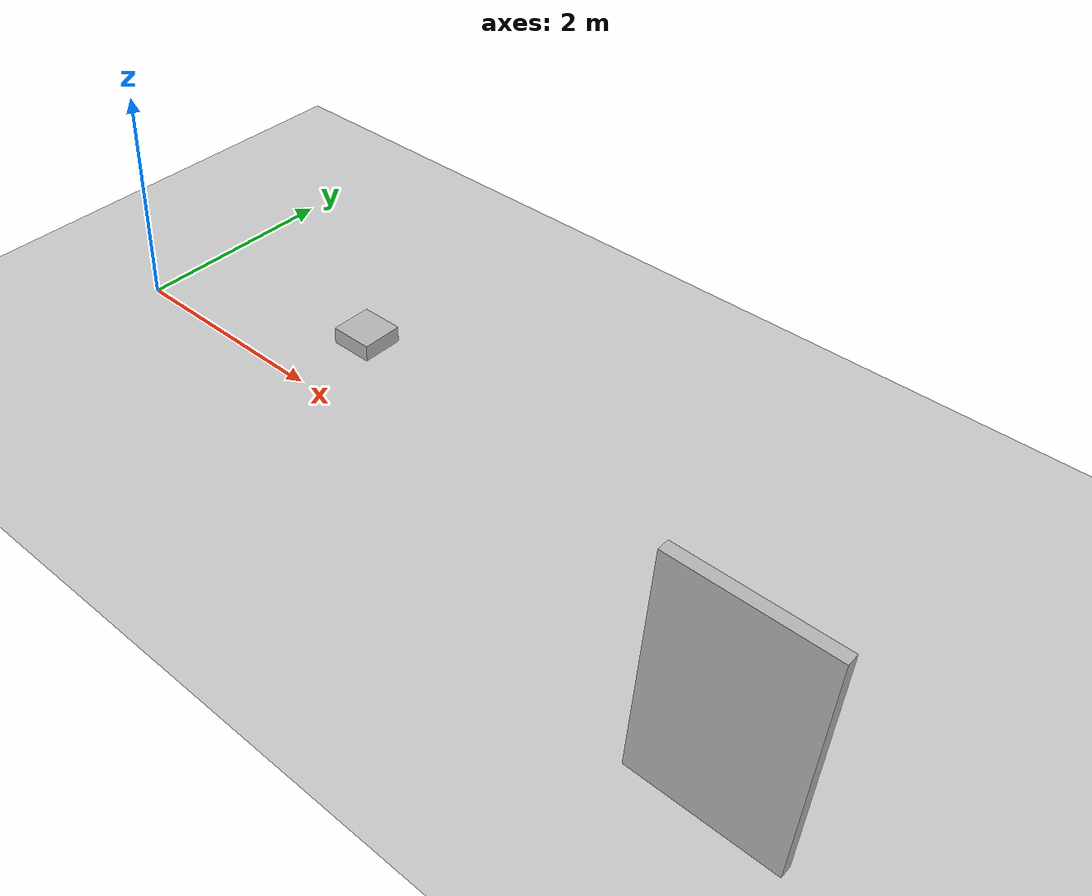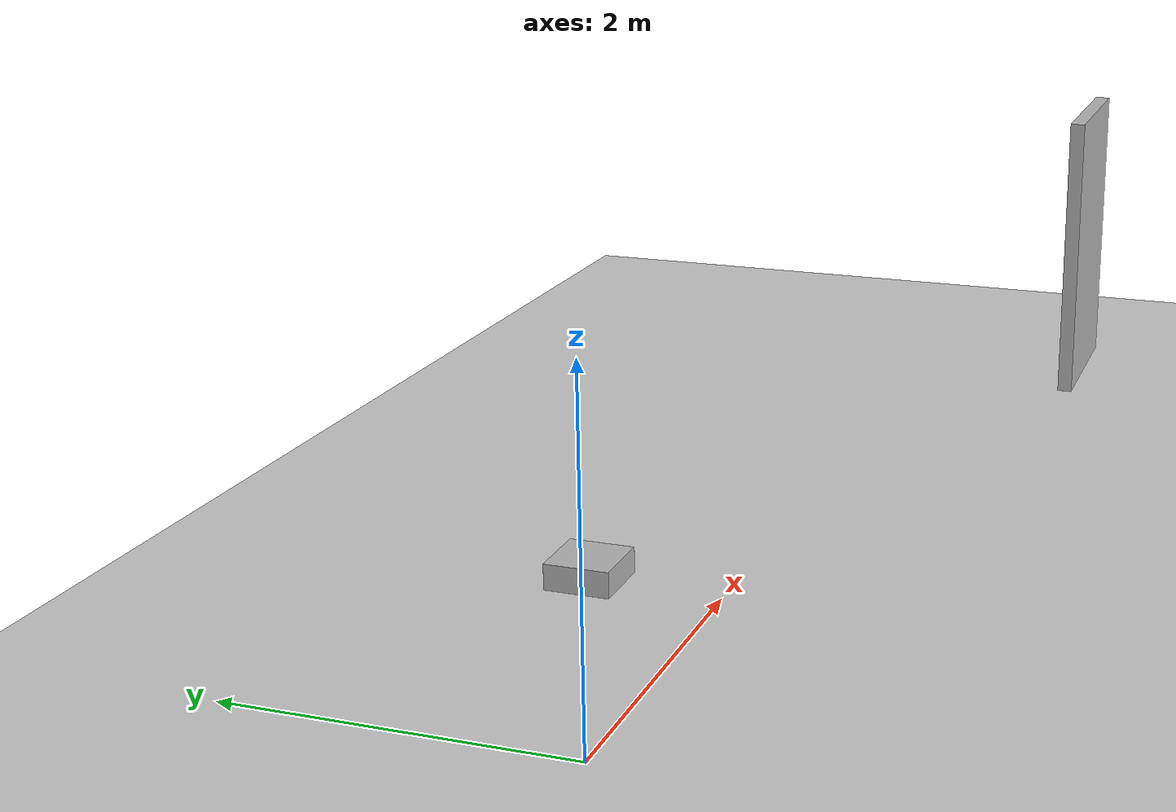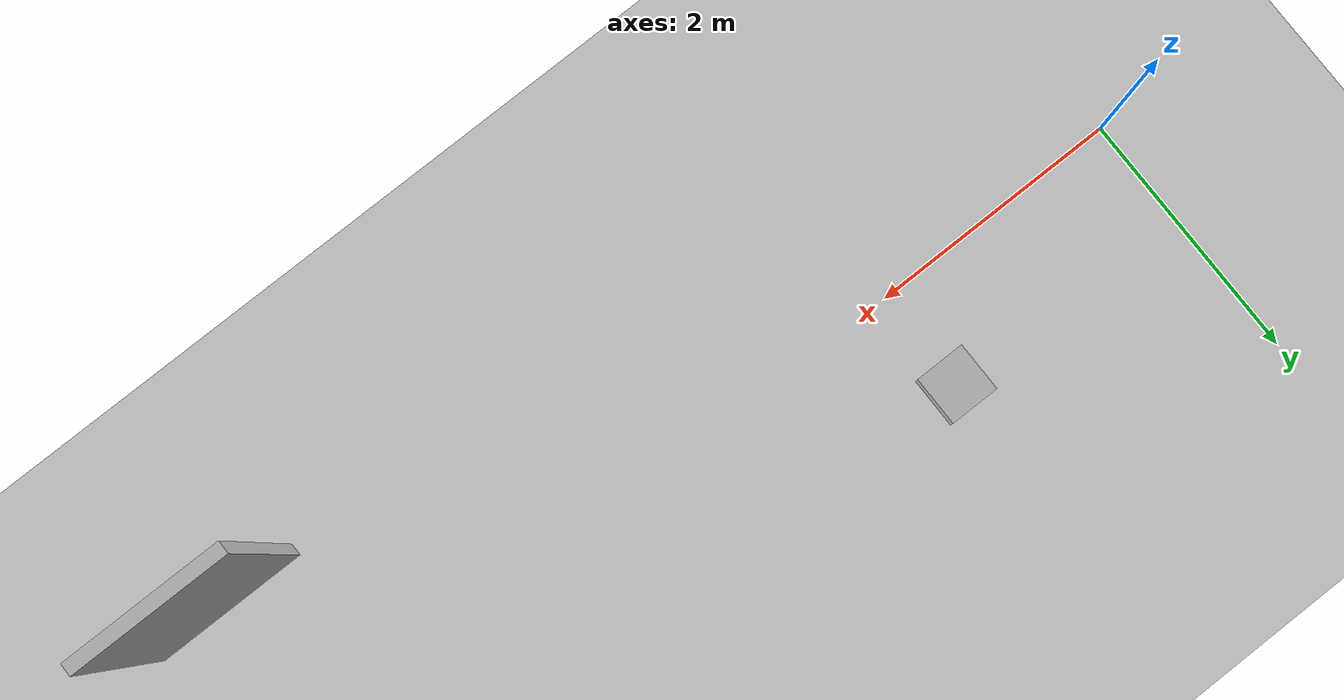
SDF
<?xml version="1.0"?>
<sdf version="1.9"><world name="obstacle_heavy_zone"><plugin filename="gz-sim-physics-system" name="gz::sim::systems::Physics"/><plugin filename="gz-sim-scene-broadcaster-system" name="gz::sim::systems::SceneBroadcaster"/><include><uri>model://sun</uri></include><include><uri>model://ground_plane</uri></include><model name="dropped_object"><static>true</static><pose>2 0.8 0.08 0 0 0</pose><link name="link"><collision name="c"><geometry><box><size>0.4 0.4 0.16</size></box></geometry></collision><visual name="v"><geometry><box><size>0.4 0.4 0.16</size></box></geometry></visual></link></model><model name="closed_door"><static>true</static><pose>7 -1.2 1 0 0 0</pose><link name="link"><collision name="c"><geometry><box><size>1.2 0.1 2</size></box></geometry></collision><visual name="v"><geometry><box><size>1.2 0.1 2</size></box></geometry></visual></link></model></world></sdf>
